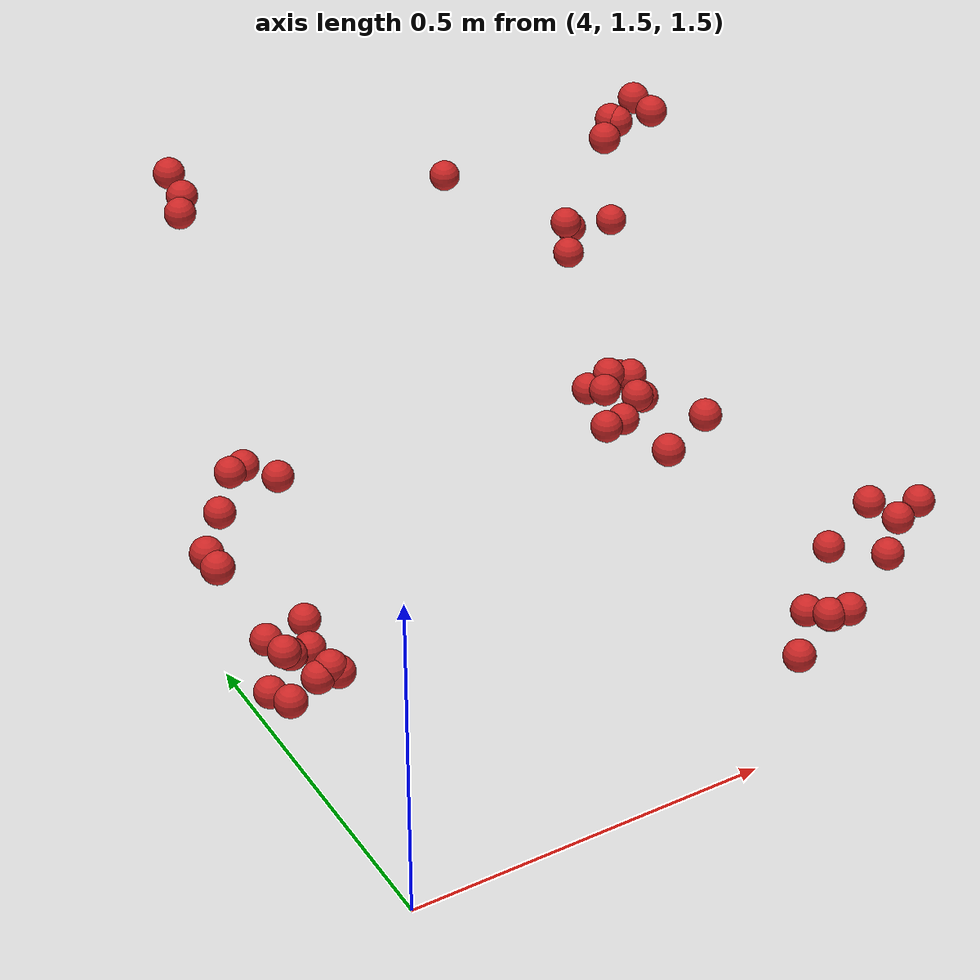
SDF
<sdf version="1.4">
 <model name="fruit_population">
  <static>true</static>
  <link name="fruit_11">
   <pose>4.0162043521151425 1.9047428372640716 1.5357876372793056 0 0 0</pose>
   <collision name="fruit_collision_11"><geometry><sphere><radius>0.022</radius></sphere></geometry></collision>
   <visual name="visual">
    <geometry><sphere><radius>0.022</radius></sphere></geometry>
    <material><script><name>Gazebo/Red</name></script></material>
   </visual>
   <inertial>
    <mass>0.05</mass>
    <inertia>
     <ixx>9.679999999999999e-06</ixx>
     <ixy>0.0</ixy>
     <ixz>0.0</ixz>
     <iyy>9.679999999999999e-06</iyy>
     <iyz>0.0</iyz>
     <izz>9.679999999999999e-06</izz>
    </inertia>
   </inertial>
   <sensor name="fruit_contact_11" type="contact">
    <plugin name="contact_plugin_11" filename="libcontact_plugin.so"/>
    <contact><collision>fruit_collision_11</collision><topic>fruit_contact_topic_11</topic></contact>
   </sensor>
  </link>
  <link name="fruit_25">
   <pose>4.094499160325868 2.1948802602424515 1.5935093604621589 0 0 0</pose>
   <collision name="fruit_collision_25"><geometry><sphere><radius>0.022</radius></sphere></geometry></collision>
   <visual name="visual">
    <geometry><sphere><radius>0.022</radius></sphere></geometry>
    <material><script><name>Gazebo/Red</name></script></material>
   </visual>
   <inertial>
    <mass>0.05</mass>
    <inertia>
     <ixx>9.679999999999999e-06</ixx>
     <ixy>0.0</ixy>
     <ixz>0.0</ixz>
     <iyy>9.679999999999999e-06</iyy>
     <iyz>0.0</iyz>
     <izz>9.679999999999999e-06</izz>
    </inertia>
   </inertial>
   <sensor name="fruit_contact_25" type="contact">
    <plugin name="contact_plugin_25" filename="libcontact_plugin.so"/>
    <contact><collision>fruit_collision_25</collision><topic>fruit_contact_topic_25</topic></contact>
   </sensor>
  </link>
  <link name="fruit_31">
   <pose>4.626004926031138 2.079940448509131 1.6046499372251806 0 0 0</pose>
   <collision name="fruit_collision_31"><geometry><sphere><radius>0.022</radius></sphere></geometry></collision>
   <visual name="visual">
    <geometry><sphere><radius>0.022</radius></sphere></geometry>
    <material><script><name>Gazebo/Red</name></script></material>
   </visual>
   <inertial>
    <mass>0.05</mass>
    <inertia>
     <ixx>9.679999999999999e-06</ixx>
     <ixy>0.0</ixy>
     <ixz>0.0</ixz>
     <iyy>9.679999999999999e-06</iyy>
     <iyz>0.0</iyz>
     <izz>9.679999999999999e-06</izz>
    </inertia>
   </inertial>
   <sensor name="fruit_contact_31" type="contact">
    <plugin name="contact_plugin_31" filename="libcontact_plugin.so"/>
    <contact><collision>fruit_collision_31</collision><topic>fruit_contact_topic_31</topic></contact>
   </sensor>
  </link>
  <link name="fruit_39">
   <pose>4.608836850979096 1.5706008025367495 1.5899644470716272 0 0 0</pose>
   <collision name="fruit_collision_39"><geometry><sphere><radius>0.022</radius></sphere></geometry></collision>
   <visual name="visual">
    <geometry><sphere><radius>0.022</radius></sphere></geometry>
    <material><script><name>Gazebo/Red</name></script></material>
   </visual>
   <inertial>
    <mass>0.05</mass>
    <inertia>
     <ixx>9.679999999999999e-06</ixx>
     <ixy>0.0</ixy>
     <ixz>0.0</ixz>
     <iyy>9.679999999999999e-06</iyy>
     <iyz>0.0</iyz>
     <izz>9.679999999999999e-06</izz>
    </inertia>
   </inertial>
   <sensor name="fruit_contact_39" type="contact">
    <plugin name="contact_plugin_39" filename="libcontact_plugin.so"/>
    <contact><collision>fruit_collision_39</collision><topic>fruit_contact_topic_39</topic></contact>
   </sensor>
  </link>
  <link name="fruit_42">
   <pose>3.9794477216401267 1.7692750189503663 1.6445852971634864 0 0 0</pose>
   <collision name="fruit_collision_42"><geometry><sphere><radius>0.022</radius></sphere></geometry></collision>
   <visual name="visual">
    <geometry><sphere><radius>0.022</radius></sphere></geometry>
    <material><script><name>Gazebo/Red</name></script></material>
   </visual>
   <inertial>
    <mass>0.05</mass>
    <inertia>
     <ixx>9.679999999999999e-06</ixx>
     <ixy>0.0</ixy>
     <ixz>0.0</ixz>
     <iyy>9.679999999999999e-06</iyy>
     <iyz>0.0</iyz>
     <izz>9.679999999999999e-06</izz>
    </inertia>
   </inertial>
   <sensor name="fruit_contact_42" type="contact">
    <plugin name="contact_plugin_42" filename="libcontact_plugin.so"/>
    <contact><collision>fruit_collision_42</collision><topic>fruit_contact_topic_42</topic></contact>
   </sensor>
  </link>
  <link name="fruit_74">
   <pose>4.219352263210061 2.5343877938436443 1.8261503831336887 0 0 0</pose>
   <collision name="fruit_collision_74"><geometry><sphere><radius>0.022</radius></sphere></geometry></collision>
   <visual name="visual">
    <geometry><sphere><radius>0.022</radius></sphere></geometry>
    <material><script><name>Gazebo/Red</name></script></material>
   </visual>
   <inertial>
    <mass>0.05</mass>
    <inertia>
     <ixx>9.679999999999999e-06</ixx>
     <ixy>0.0</ixy>
     <ixz>0.0</ixz>
     <iyy>9.679999999999999e-06</iyy>
     <iyz>0.0</iyz>
     <izz>9.679999999999999e-06</izz>
    </inertia>
   </inertial>
   <sensor name="fruit_contact_74" type="contact">
    <plugin name="contact_plugin_74" filename="libcontact_plugin.so"/>
    <contact><collision>fruit_collision_74</collision><topic>fruit_contact_topic_74</topic></contact>
   </sensor>
  </link>
  <link name="fruit_125">
   <pose>4.711928659190081 2.6822179819482774 1.6185401965041541 0 0 0</pose>
   <collision name="fruit_collision_125"><geometry><sphere><radius>0.022</radius></sphere></geometry></collision>
   <visual name="visual">
    <geometry><sphere><radius>0.022</radius></sphere></geometry>
    <material><script><name>Gazebo/Red</name></script></material>
   </visual>
   <inertial>
    <mass>0.05</mass>
    <inertia>
     <ixx>9.679999999999999e-06</ixx>
     <ixy>0.0</ixy>
     <ixz>0.0</ixz>
     <iyy>9.679999999999999e-06</iyy>
     <iyz>0.0</iyz>
     <izz>9.679999999999999e-06</izz>
    </inertia>
   </inertial>
   <sensor name="fruit_contact_125" type="contact">
    <plugin name="contact_plugin_125" filename="libcontact_plugin.so"/>
    <contact><collision>fruit_collision_125</collision><topic>fruit_contact_topic_125</topic></contact>
   </sensor>
  </link>
  <link name="fruit_128">
   <pose>4.81530322433159 1.676169251220019 1.5945221979912332 0 0 0</pose>
   <collision name="fruit_collision_128"><geometry><sphere><radius>0.022</radius></sphere></geometry></collision>
   <visual name="visual">
    <geometry><sphere><radius>0.022</radius></sphere></geometry>
    <material><script><name>Gazebo/Red</name></script></material>
   </visual>
   <inertial>
    <mass>0.05</mass>
    <inertia>
     <ixx>9.679999999999999e-06</ixx>
     <ixy>0.0</ixy>
     <ixz>0.0</ixz>
     <iyy>9.679999999999999e-06</iyy>
     <iyz>0.0</iyz>
     <izz>9.679999999999999e-06</izz>
    </inertia>
   </inertial>
   <sensor name="fruit_contact_128" type="contact">
    <plugin name="contact_plugin_128" filename="libcontact_plugin.so"/>
    <contact><collision>fruit_collision_128</collision><topic>fruit_contact_topic_128</topic></contact>
   </sensor>
  </link>
  <link name="fruit_131">
   <pose>4.720716970649775 1.7199951657364072 1.503241605257596 0 0 0</pose>
   <collision name="fruit_collision_131"><geometry><sphere><radius>0.022</radius></sphere></geometry></collision>
   <visual name="visual">
    <geometry><sphere><radius>0.022</radius></sphere></geometry>
    <material><script><name>Gazebo/Red</name></script></material>
   </visual>
   <inertial>
    <mass>0.05</mass>
    <inertia>
     <ixx>9.679999999999999e-06</ixx>
     <ixy>0.0</ixy>
     <ixz>0.0</ixz>
     <iyy>9.679999999999999e-06</iyy>
     <iyz>0.0</iyz>
     <izz>9.679999999999999e-06</izz>
    </inertia>
   </inertial>
   <sensor name="fruit_contact_131" type="contact">
    <plugin name="contact_plugin_131" filename="libcontact_plugin.so"/>
    <contact><collision>fruit_collision_131</collision><topic>fruit_contact_topic_131</topic></contact>
   </sensor>
  </link>
  <link name="fruit_132">
   <pose>4.797273644751471 2.4712365531746423 1.58299856172983 0 0 0</pose>
   <collision name="fruit_collision_132"><geometry><sphere><radius>0.022</radius></sphere></geometry></collision>
   <visual name="visual">
    <geometry><sphere><radius>0.022</radius></sphere></geometry>
    <material><script><name>Gazebo/Red</name></script></material>
   </visual>
   <inertial>
    <mass>0.05</mass>
    <inertia>
     <ixx>9.679999999999999e-06</ixx>
     <ixy>0.0</ixy>
     <ixz>0.0</ixz>
     <iyy>9.679999999999999e-06</iyy>
     <iyz>0.0</iyz>
     <izz>9.679999999999999e-06</izz>
    </inertia>
   </inertial>
   <sensor name="fruit_contact_132" type="contact">
    <plugin name="contact_plugin_132" filename="libcontact_plugin.so"/>
    <contact><collision>fruit_collision_132</collision><topic>fruit_contact_topic_132</topic></contact>
   </sensor>
  </link>
  <link name="fruit_148">
   <pose>4.802287558534481 2.383468317016699 1.8354613131143793 0 0 0</pose>
   <collision name="fruit_collision_148"><geometry><sphere><radius>0.022</radius></sphere></geometry></collision>
   <visual name="visual">
    <geometry><sphere><radius>0.022</radius></sphere></geometry>
    <material><script><name>Gazebo/Red</name></script></material>
   </visual>
   <inertial>
    <mass>0.05</mass>
    <inertia>
     <ixx>9.679999999999999e-06</ixx>
     <ixy>0.0</ixy>
     <ixz>0.0</ixz>
     <iyy>9.679999999999999e-06</iyy>
     <iyz>0.0</iyz>
     <izz>9.679999999999999e-06</izz>
    </inertia>
   </inertial>
   <sensor name="fruit_contact_148" type="contact">
    <plugin name="contact_plugin_148" filename="libcontact_plugin.so"/>
    <contact><collision>fruit_collision_148</collision><topic>fruit_contact_topic_148</topic></contact>
   </sensor>
  </link>
  <link name="fruit_165">
   <pose>4.585671247718744 1.858172738304406 1.7370080458990373 0 0 0</pose>
   <collision name="fruit_collision_165"><geometry><sphere><radius>0.022</radius></sphere></geometry></collision>
   <visual name="visual">
    <geometry><sphere><radius>0.022</radius></sphere></geometry>
    <material><script><name>Gazebo/Red</name></script></material>
   </visual>
   <inertial>
    <mass>0.05</mass>
    <inertia>
     <ixx>9.679999999999999e-06</ixx>
     <ixy>0.0</ixy>
     <ixz>0.0</ixz>
     <iyy>9.679999999999999e-06</iyy>
     <iyz>0.0</iyz>
     <izz>9.679999999999999e-06</izz>
    </inertia>
   </inertial>
   <sensor name="fruit_contact_165" type="contact">
    <plugin name="contact_plugin_165" filename="libcontact_plugin.so"/>
    <contact><collision>fruit_collision_165</collision><topic>fruit_contact_topic_165</topic></contact>
   </sensor>
  </link>
  <link name="fruit_180">
   <pose>4.852100298155959 2.4328940915136554 1.816226708182252 0 0 0</pose>
   <collision name="fruit_collision_180"><geometry><sphere><radius>0.022</radius></sphere></geometry></collision>
   <visual name="visual">
    <geometry><sphere><radius>0.022</radius></sphere></geometry>
    <material><script><name>Gazebo/Red</name></script></material>
   </visual>
   <inertial>
    <mass>0.05</mass>
    <inertia>
     <ixx>9.679999999999999e-06</ixx>
     <ixy>0.0</ixy>
     <ixz>0.0</ixz>
     <iyy>9.679999999999999e-06</iyy>
     <iyz>0.0</iyz>
     <izz>9.679999999999999e-06</izz>
    </inertia>
   </inertial>
   <sensor name="fruit_contact_180" type="contact">
    <plugin name="contact_plugin_180" filename="libcontact_plugin.so"/>
    <contact><collision>fruit_collision_180</collision><topic>fruit_contact_topic_180</topic></contact>
   </sensor>
  </link>
  <link name="fruit_215">
   <pose>4.687666405672489 1.6207431292897945 1.5880148941882835 0 0 0</pose>
   <collision name="fruit_collision_215"><geometry><sphere><radius>0.022</radius></sphere></geometry></collision>
   <visual name="visual">
    <geometry><sphere><radius>0.022</radius></sphere></geometry>
    <material><script><name>Gazebo/Red</name></script></material>
   </visual>
   <inertial>
    <mass>0.05</mass>
    <inertia>
     <ixx>9.679999999999999e-06</ixx>
     <ixy>0.0</ixy>
     <ixz>0.0</ixz>
     <iyy>9.679999999999999e-06</iyy>
     <iyz>0.0</iyz>
     <izz>9.679999999999999e-06</izz>
    </inertia>
   </inertial>
   <sensor name="fruit_contact_215" type="contact">
    <plugin name="contact_plugin_215" filename="libcontact_plugin.so"/>
    <contact><collision>fruit_collision_215</collision><topic>fruit_contact_topic_215</topic></contact>
   </sensor>
  </link>
  <link name="fruit_229">
   <pose>4.6678330712776 2.1539724494736103 1.6003763107101694 0 0 0</pose>
   <collision name="fruit_collision_229"><geometry><sphere><radius>0.022</radius></sphere></geometry></collision>
   <visual name="visual">
    <geometry><sphere><radius>0.022</radius></sphere></geometry>
    <material><script><name>Gazebo/Red</name></script></material>
   </visual>
   <inertial>
    <mass>0.05</mass>
    <inertia>
     <ixx>9.679999999999999e-06</ixx>
     <ixy>0.0</ixy>
     <ixz>0.0</ixz>
     <iyy>9.679999999999999e-06</iyy>
     <iyz>0.0</iyz>
     <izz>9.679999999999999e-06</izz>
    </inertia>
   </inertial>
   <sensor name="fruit_contact_229" type="contact">
    <plugin name="contact_plugin_229" filename="libcontact_plugin.so"/>
    <contact><collision>fruit_collision_229</collision><topic>fruit_contact_topic_229</topic></contact>
   </sensor>
  </link>
  <link name="fruit_235">
   <pose>4.715909177323655 1.6157356808062333 1.5876490571861954 0 0 0</pose>
   <collision name="fruit_collision_235"><geometry><sphere><radius>0.022</radius></sphere></geometry></collision>
   <visual name="visual">
    <geometry><sphere><radius>0.022</radius></sphere></geometry>
    <material><script><name>Gazebo/Red</name></script></material>
   </visual>
   <inertial>
    <mass>0.05</mass>
    <inertia>
     <ixx>9.679999999999999e-06</ixx>
     <ixy>0.0</ixy>
     <ixz>0.0</ixz>
     <iyy>9.679999999999999e-06</iyy>
     <iyz>0.0</iyz>
     <izz>9.679999999999999e-06</izz>
    </inertia>
   </inertial>
   <sensor name="fruit_contact_235" type="contact">
    <plugin name="contact_plugin_235" filename="libcontact_plugin.so"/>
    <contact><collision>fruit_collision_235</collision><topic>fruit_contact_topic_235</topic></contact>
   </sensor>
  </link>
  <link name="fruit_246">
   <pose>4.246040669585065 2.5830554645423223 1.8148079206769185 0 0 0</pose>
   <collision name="fruit_collision_246"><geometry><sphere><radius>0.022</radius></sphere></geometry></collision>
   <visual name="visual">
    <geometry><sphere><radius>0.022</radius></sphere></geometry>
    <material><script><name>Gazebo/Red</name></script></material>
   </visual>
   <inertial>
    <mass>0.05</mass>
    <inertia>
     <ixx>9.679999999999999e-06</ixx>
     <ixy>0.0</ixy>
     <ixz>0.0</ixz>
     <iyy>9.679999999999999e-06</iyy>
     <iyz>0.0</iyz>
     <izz>9.679999999999999e-06</izz>
    </inertia>
   </inertial>
   <sensor name="fruit_contact_246" type="contact">
    <plugin name="contact_plugin_246" filename="libcontact_plugin.so"/>
    <contact><collision>fruit_collision_246</collision><topic>fruit_contact_topic_246</topic></contact>
   </sensor>
  </link>
  <link name="fruit_265">
   <pose>4.024045659908161 1.8736158165318326 1.626617536212047 0 0 0</pose>
   <collision name="fruit_collision_265"><geometry><sphere><radius>0.022</radius></sphere></geometry></collision>
   <visual name="visual">
    <geometry><sphere><radius>0.022</radius></sphere></geometry>
    <material><script><name>Gazebo/Red</name></script></material>
   </visual>
   <inertial>
    <mass>0.05</mass>
    <inertia>
     <ixx>9.679999999999999e-06</ixx>
     <ixy>0.0</ixy>
     <ixz>0.0</ixz>
     <iyy>9.679999999999999e-06</iyy>
     <iyz>0.0</iyz>
     <izz>9.679999999999999e-06</izz>
    </inertia>
   </inertial>
   <sensor name="fruit_contact_265" type="contact">
    <plugin name="contact_plugin_265" filename="libcontact_plugin.so"/>
    <contact><collision>fruit_collision_265</collision><topic>fruit_contact_topic_265</topic></contact>
   </sensor>
  </link>
  <link name="fruit_325">
   <pose>4.077661645293439 1.9653186388576822 1.5262123262641325 0 0 0</pose>
   <collision name="fruit_collision_325"><geometry><sphere><radius>0.022</radius></sphere></geometry></collision>
   <visual name="visual">
    <geometry><sphere><radius>0.022</radius></sphere></geometry>
    <material><script><name>Gazebo/Red</name></script></material>
   </visual>
   <inertial>
    <mass>0.05</mass>
    <inertia>
     <ixx>9.679999999999999e-06</ixx>
     <ixy>0.0</ixy>
     <ixz>0.0</ixz>
     <iyy>9.679999999999999e-06</iyy>
     <iyz>0.0</iyz>
     <izz>9.679999999999999e-06</izz>
    </inertia>
   </inertial>
   <sensor name="fruit_contact_325" type="contact">
    <plugin name="contact_plugin_325" filename="libcontact_plugin.so"/>
    <contact><collision>fruit_collision_325</collision><topic>fruit_contact_topic_325</topic></contact>
   </sensor>
  </link>
  <link name="fruit_338">
   <pose>4.70850171533858 2.185899148338576 1.5881276936756619 0 0 0</pose>
   <collision name="fruit_collision_338"><geometry><sphere><radius>0.022</radius></sphere></geometry></collision>
   <visual name="visual">
    <geometry><sphere><radius>0.022</radius></sphere></geometry>
    <material><script><name>Gazebo/Red</name></script></material>
   </visual>
   <inertial>
    <mass>0.05</mass>
    <inertia>
     <ixx>9.679999999999999e-06</ixx>
     <ixy>0.0</ixy>
     <ixz>0.0</ixz>
     <iyy>9.679999999999999e-06</iyy>
     <iyz>0.0</iyz>
     <izz>9.679999999999999e-06</izz>
    </inertia>
   </inertial>
   <sensor name="fruit_contact_338" type="contact">
    <plugin name="contact_plugin_338" filename="libcontact_plugin.so"/>
    <contact><collision>fruit_collision_338</collision><topic>fruit_contact_topic_338</topic></contact>
   </sensor>
  </link>
  <link name="fruit_367">
   <pose>4.14940669895183 2.272567970315322 1.5849263516158243 0 0 0</pose>
   <collision name="fruit_collision_367"><geometry><sphere><radius>0.022</radius></sphere></geometry></collision>
   <visual name="visual">
    <geometry><sphere><radius>0.022</radius></sphere></geometry>
    <material><script><name>Gazebo/Red</name></script></material>
   </visual>
   <inertial>
    <mass>0.05</mass>
    <inertia>
     <ixx>9.679999999999999e-06</ixx>
     <ixy>0.0</ixy>
     <ixz>0.0</ixz>
     <iyy>9.679999999999999e-06</iyy>
     <iyz>0.0</iyz>
     <izz>9.679999999999999e-06</izz>
    </inertia>
   </inertial>
   <sensor name="fruit_contact_367" type="contact">
    <plugin name="contact_plugin_367" filename="libcontact_plugin.so"/>
    <contact><collision>fruit_collision_367</collision><topic>fruit_contact_topic_367</topic></contact>
   </sensor>
  </link>
  <link name="fruit_388">
   <pose>4.893544880893253 2.4088696570385606 1.8335403078714687 0 0 0</pose>
   <collision name="fruit_collision_388"><geometry><sphere><radius>0.022</radius></sphere></geometry></collision>
   <visual name="visual">
    <geometry><sphere><radius>0.022</radius></sphere></geometry>
    <material><script><name>Gazebo/Red</name></script></material>
   </visual>
   <inertial>
    <mass>0.05</mass>
    <inertia>
     <ixx>9.679999999999999e-06</ixx>
     <ixy>0.0</ixy>
     <ixz>0.0</ixz>
     <iyy>9.679999999999999e-06</iyy>
     <iyz>0.0</iyz>
     <izz>9.679999999999999e-06</izz>
    </inertia>
   </inertial>
   <sensor name="fruit_contact_388" type="contact">
    <plugin name="contact_plugin_388" filename="libcontact_plugin.so"/>
    <contact><collision>fruit_collision_388</collision><topic>fruit_contact_topic_388</topic></contact>
   </sensor>
  </link>
  <link name="fruit_400">
   <pose>4.914995238933777 1.7503307980226777 1.5892818448460615 0 0 0</pose>
   <collision name="fruit_collision_400"><geometry><sphere><radius>0.022</radius></sphere></geometry></collision>
   <visual name="visual">
    <geometry><sphere><radius>0.022</radius></sphere></geometry>
    <material><script><name>Gazebo/Red</name></script></material>
   </visual>
   <inertial>
    <mass>0.05</mass>
    <inertia>
     <ixx>9.679999999999999e-06</ixx>
     <ixy>0.0</ixy>
     <ixz>0.0</ixz>
     <iyy>9.679999999999999e-06</iyy>
     <iyz>0.0</iyz>
     <izz>9.679999999999999e-06</izz>
    </inertia>
   </inertial>
   <sensor name="fruit_contact_400" type="contact">
    <plugin name="contact_plugin_400" filename="libcontact_plugin.so"/>
    <contact><collision>fruit_collision_400</collision><topic>fruit_contact_topic_400</topic></contact>
   </sensor>
  </link>
  <link name="fruit_410">
   <pose>4.833865170887399 2.540879509520191 1.5783065229699984 0 0 0</pose>
   <collision name="fruit_collision_410"><geometry><sphere><radius>0.022</radius></sphere></geometry></collision>
   <visual name="visual">
    <geometry><sphere><radius>0.022</radius></sphere></geometry>
    <material><script><name>Gazebo/Red</name></script></material>
   </visual>
   <inertial>
    <mass>0.05</mass>
    <inertia>
     <ixx>9.679999999999999e-06</ixx>
     <ixy>0.0</ixy>
     <ixz>0.0</ixz>
     <iyy>9.679999999999999e-06</iyy>
     <iyz>0.0</iyz>
     <izz>9.679999999999999e-06</izz>
    </inertia>
   </inertial>
   <sensor name="fruit_contact_410" type="contact">
    <plugin name="contact_plugin_410" filename="libcontact_plugin.so"/>
    <contact><collision>fruit_collision_410</collision><topic>fruit_contact_topic_410</topic></contact>
   </sensor>
  </link>
  <link name="fruit_424">
   <pose>4.066336355103551 2.0133192439368646 1.5199628757919568 0 0 0</pose>
   <collision name="fruit_collision_424"><geometry><sphere><radius>0.022</radius></sphere></geometry></collision>
   <visual name="visual">
    <geometry><sphere><radius>0.022</radius></sphere></geometry>
    <material><script><name>Gazebo/Red</name></script></material>
   </visual>
   <inertial>
    <mass>0.05</mass>
    <inertia>
     <ixx>9.679999999999999e-06</ixx>
     <ixy>0.0</ixy>
     <ixz>0.0</ixz>
     <iyy>9.679999999999999e-06</iyy>
     <iyz>0.0</iyz>
     <izz>9.679999999999999e-06</izz>
    </inertia>
   </inertial>
   <sensor name="fruit_contact_424" type="contact">
    <plugin name="contact_plugin_424" filename="libcontact_plugin.so"/>
    <contact><collision>fruit_collision_424</collision><topic>fruit_contact_topic_424</topic></contact>
   </sensor>
  </link>
  <link name="fruit_426">
   <pose>4.693354763924732 1.6254762996251784 1.5796075394355749 0 0 0</pose>
   <collision name="fruit_collision_426"><geometry><sphere><radius>0.022</radius></sphere></geometry></collision>
   <visual name="visual">
    <geometry><sphere><radius>0.022</radius></sphere></geometry>
    <material><script><name>Gazebo/Red</name></script></material>
   </visual>
   <inertial>
    <mass>0.05</mass>
    <inertia>
     <ixx>9.679999999999999e-06</ixx>
     <ixy>0.0</ixy>
     <ixz>0.0</ixz>
     <iyy>9.679999999999999e-06</iyy>
     <iyz>0.0</iyz>
     <izz>9.679999999999999e-06</izz>
    </inertia>
   </inertial>
   <sensor name="fruit_contact_426" type="contact">
    <plugin name="contact_plugin_426" filename="libcontact_plugin.so"/>
    <contact><collision>fruit_collision_426</collision><topic>fruit_contact_topic_426</topic></contact>
   </sensor>
  </link>
  <link name="fruit_430">
   <pose>4.658006260335356 2.1835844503650184 1.5863001800125582 0 0 0</pose>
   <collision name="fruit_collision_430"><geometry><sphere><radius>0.022</radius></sphere></geometry></collision>
   <visual name="visual">
    <geometry><sphere><radius>0.022</radius></sphere></geometry>
    <material><script><name>Gazebo/Red</name></script></material>
   </visual>
   <inertial>
    <mass>0.05</mass>
    <inertia>
     <ixx>9.679999999999999e-06</ixx>
     <ixy>0.0</ixy>
     <ixz>0.0</ixz>
     <iyy>9.679999999999999e-06</iyy>
     <iyz>0.0</iyz>
     <izz>9.679999999999999e-06</izz>
    </inertia>
   </inertial>
   <sensor name="fruit_contact_430" type="contact">
    <plugin name="contact_plugin_430" filename="libcontact_plugin.so"/>
    <contact><collision>fruit_collision_430</collision><topic>fruit_contact_topic_430</topic></contact>
   </sensor>
  </link>
  <link name="fruit_433">
   <pose>4.688799580774525 2.1786555625630726 1.603976480156369 0 0 0</pose>
   <collision name="fruit_collision_433"><geometry><sphere><radius>0.022</radius></sphere></geometry></collision>
   <visual name="visual">
    <geometry><sphere><radius>0.022</radius></sphere></geometry>
    <material><script><name>Gazebo/Red</name></script></material>
   </visual>
   <inertial>
    <mass>0.05</mass>
    <inertia>
     <ixx>9.679999999999999e-06</ixx>
     <ixy>0.0</ixy>
     <ixz>0.0</ixz>
     <iyy>9.679999999999999e-06</iyy>
     <iyz>0.0</iyz>
     <izz>9.679999999999999e-06</izz>
    </inertia>
   </inertial>
   <sensor name="fruit_contact_433" type="contact">
    <plugin name="contact_plugin_433" filename="libcontact_plugin.so"/>
    <contact><collision>fruit_collision_433</collision><topic>fruit_contact_topic_433</topic></contact>
   </sensor>
  </link>
  <link name="fruit_444">
   <pose>4.700043515176777 2.1213385941430465 1.6005035885978147 0 0 0</pose>
   <collision name="fruit_collision_444"><geometry><sphere><radius>0.022</radius></sphere></geometry></collision>
   <visual name="visual">
    <geometry><sphere><radius>0.022</radius></sphere></geometry>
    <material><script><name>Gazebo/Red</name></script></material>
   </visual>
   <inertial>
    <mass>0.05</mass>
    <inertia>
     <ixx>9.679999999999999e-06</ixx>
     <ixy>0.0</ixy>
     <ixz>0.0</ixz>
     <iyy>9.679999999999999e-06</iyy>
     <iyz>0.0</iyz>
     <izz>9.679999999999999e-06</izz>
    </inertia>
   </inertial>
   <sensor name="fruit_contact_444" type="contact">
    <plugin name="contact_plugin_444" filename="libcontact_plugin.so"/>
    <contact><collision>fruit_collision_444</collision><topic>fruit_contact_topic_444</topic></contact>
   </sensor>
  </link>
  <link name="fruit_487">
   <pose>4.033397261264316 1.7986424698160821 1.6373501732787965 0 0 0</pose>
   <collision name="fruit_collision_487"><geometry><sphere><radius>0.022</radius></sphere></geometry></collision>
   <visual name="visual">
    <geometry><sphere><radius>0.022</radius></sphere></geometry>
    <material><script><name>Gazebo/Red</name></script></material>
   </visual>
   <inertial>
    <mass>0.05</mass>
    <inertia>
     <ixx>9.679999999999999e-06</ixx>
     <ixy>0.0</ixy>
     <ixz>0.0</ixz>
     <iyy>9.679999999999999e-06</iyy>
     <iyz>0.0</iyz>
     <izz>9.679999999999999e-06</izz>
    </inertia>
   </inertial>
   <sensor name="fruit_contact_487" type="contact">
    <plugin name="contact_plugin_487" filename="libcontact_plugin.so"/>
    <contact><collision>fruit_collision_487</collision><topic>fruit_contact_topic_487</topic></contact>
   </sensor>
  </link>
  <link name="fruit_534">
   <pose>4.895193712768144 2.459450707906371 1.8250372074137053 0 0 0</pose>
   <collision name="fruit_collision_534"><geometry><sphere><radius>0.022</radius></sphere></geometry></collision>
   <visual name="visual">
    <geometry><sphere><radius>0.022</radius></sphere></geometry>
    <material><script><name>Gazebo/Red</name></script></material>
   </visual>
   <inertial>
    <mass>0.05</mass>
    <inertia>
     <ixx>9.679999999999999e-06</ixx>
     <ixy>0.0</ixy>
     <ixz>0.0</ixz>
     <iyy>9.679999999999999e-06</iyy>
     <iyz>0.0</iyz>
     <izz>9.679999999999999e-06</izz>
    </inertia>
   </inertial>
   <sensor name="fruit_contact_534" type="contact">
    <plugin name="contact_plugin_534" filename="libcontact_plugin.so"/>
    <contact><collision>fruit_collision_534</collision><topic>fruit_contact_topic_534</topic></contact>
   </sensor>
  </link>
  <link name="fruit_543">
   <pose>4.824454920506052 1.823869568991043 1.4931409606250456 0 0 0</pose>
   <collision name="fruit_collision_543"><geometry><sphere><radius>0.022</radius></sphere></geometry></collision>
   <visual name="visual">
    <geometry><sphere><radius>0.022</radius></sphere></geometry>
    <material><script><name>Gazebo/Red</name></script></material>
   </visual>
   <inertial>
    <mass>0.05</mass>
    <inertia>
     <ixx>9.679999999999999e-06</ixx>
     <ixy>0.0</ixy>
     <ixz>0.0</ixz>
     <iyy>9.679999999999999e-06</iyy>
     <iyz>0.0</iyz>
     <izz>9.679999999999999e-06</izz>
    </inertia>
   </inertial>
   <sensor name="fruit_contact_543" type="contact">
    <plugin name="contact_plugin_543" filename="libcontact_plugin.so"/>
    <contact><collision>fruit_collision_543</collision><topic>fruit_contact_topic_543</topic></contact>
   </sensor>
  </link>
  <link name="fruit_546">
   <pose>3.940868957658782 1.9085904154061837 1.8012349298658432 0 0 0</pose>
   <collision name="fruit_collision_546"><geometry><sphere><radius>0.022</radius></sphere></geometry></collision>
   <visual name="visual">
    <geometry><sphere><radius>0.022</radius></sphere></geometry>
    <material><script><name>Gazebo/Red</name></script></material>
   </visual>
   <inertial>
    <mass>0.05</mass>
    <inertia>
     <ixx>9.679999999999999e-06</ixx>
     <ixy>0.0</ixy>
     <ixz>0.0</ixz>
     <iyy>9.679999999999999e-06</iyy>
     <iyz>0.0</iyz>
     <izz>9.679999999999999e-06</izz>
    </inertia>
   </inertial>
   <sensor name="fruit_contact_546" type="contact">
    <plugin name="contact_plugin_546" filename="libcontact_plugin.so"/>
    <contact><collision>fruit_collision_546</collision><topic>fruit_contact_topic_546</topic></contact>
   </sensor>
  </link>
  <link name="fruit_557">
   <pose>4.720316170877134 2.1721034815367943 1.5939696282170244 0 0 0</pose>
   <collision name="fruit_collision_557"><geometry><sphere><radius>0.022</radius></sphere></geometry></collision>
   <visual name="visual">
    <geometry><sphere><radius>0.022</radius></sphere></geometry>
    <material><script><name>Gazebo/Red</name></script></material>
   </visual>
   <inertial>
    <mass>0.05</mass>
    <inertia>
     <ixx>9.679999999999999e-06</ixx>
     <ixy>0.0</ixy>
     <ixz>0.0</ixz>
     <iyy>9.679999999999999e-06</iyy>
     <iyz>0.0</iyz>
     <izz>9.679999999999999e-06</izz>
    </inertia>
   </inertial>
   <sensor name="fruit_contact_557" type="contact">
    <plugin name="contact_plugin_557" filename="libcontact_plugin.so"/>
    <contact><collision>fruit_collision_557</collision><topic>fruit_contact_topic_557</topic></contact>
   </sensor>
  </link>
  <link name="fruit_603">
   <pose>4.857767064955095 1.7835071123531774 1.5878918282528312 0 0 0</pose>
   <collision name="fruit_collision_603"><geometry><sphere><radius>0.022</radius></sphere></geometry></collision>
   <visual name="visual">
    <geometry><sphere><radius>0.022</radius></sphere></geometry>
    <material><script><name>Gazebo/Red</name></script></material>
   </visual>
   <inertial>
    <mass>0.05</mass>
    <inertia>
     <ixx>9.679999999999999e-06</ixx>
     <ixy>0.0</ixy>
     <ixz>0.0</ixz>
     <iyy>9.679999999999999e-06</iyy>
     <iyz>0.0</iyz>
     <izz>9.679999999999999e-06</izz>
    </inertia>
   </inertial>
   <sensor name="fruit_contact_603" type="contact">
    <plugin name="contact_plugin_603" filename="libcontact_plugin.so"/>
    <contact><collision>fruit_collision_603</collision><topic>fruit_contact_topic_603</topic></contact>
   </sensor>
  </link>
  <link name="fruit_623">
   <pose>3.9422200346575935 1.8815808723324081 1.7972387670759278 0 0 0</pose>
   <collision name="fruit_collision_623"><geometry><sphere><radius>0.022</radius></sphere></geometry></collision>
   <visual name="visual">
    <geometry><sphere><radius>0.022</radius></sphere></geometry>
    <material><script><name>Gazebo/Red</name></script></material>
   </visual>
   <inertial>
    <mass>0.05</mass>
    <inertia>
     <ixx>9.679999999999999e-06</ixx>
     <ixy>0.0</ixy>
     <ixz>0.0</ixz>
     <iyy>9.679999999999999e-06</iyy>
     <iyz>0.0</iyz>
     <izz>9.679999999999999e-06</izz>
    </inertia>
   </inertial>
   <sensor name="fruit_contact_623" type="contact">
    <plugin name="contact_plugin_623" filename="libcontact_plugin.so"/>
    <contact><collision>fruit_collision_623</collision><topic>fruit_contact_topic_623</topic></contact>
   </sensor>
  </link>
  <link name="fruit_629">
   <pose>4.109550574357251 1.9737164509669016 1.5170852053401134 0 0 0</pose>
   <collision name="fruit_collision_629"><geometry><sphere><radius>0.022</radius></sphere></geometry></collision>
   <visual name="visual">
    <geometry><sphere><radius>0.022</radius></sphere></geometry>
    <material><script><name>Gazebo/Red</name></script></material>
   </visual>
   <inertial>
    <mass>0.05</mass>
    <inertia>
     <ixx>9.679999999999999e-06</ixx>
     <ixy>0.0</ixy>
     <ixz>0.0</ixz>
     <iyy>9.679999999999999e-06</iyy>
     <iyz>0.0</iyz>
     <izz>9.679999999999999e-06</izz>
    </inertia>
   </inertial>
   <sensor name="fruit_contact_629" type="contact">
    <plugin name="contact_plugin_629" filename="libcontact_plugin.so"/>
    <contact><collision>fruit_collision_629</collision><topic>fruit_contact_topic_629</topic></contact>
   </sensor>
  </link>
  <link name="fruit_651">
   <pose>4.895879447972543 2.516482500114885 1.5758754765850067 0 0 0</pose>
   <collision name="fruit_collision_651"><geometry><sphere><radius>0.022</radius></sphere></geometry></collision>
   <visual name="visual">
    <geometry><sphere><radius>0.022</radius></sphere></geometry>
    <material><script><name>Gazebo/Red</name></script></material>
   </visual>
   <inertial>
    <mass>0.05</mass>
    <inertia>
     <ixx>9.679999999999999e-06</ixx>
     <ixy>0.0</ixy>
     <ixz>0.0</ixz>
     <iyy>9.679999999999999e-06</iyy>
     <iyz>0.0</iyz>
     <izz>9.679999999999999e-06</izz>
    </inertia>
   </inertial>
   <sensor name="fruit_contact_651" type="contact">
    <plugin name="contact_plugin_651" filename="libcontact_plugin.so"/>
    <contact><collision>fruit_collision_651</collision><topic>fruit_contact_topic_651</topic></contact>
   </sensor>
  </link>
  <link name="fruit_659">
   <pose>4.672271860450133 1.906059654067503 1.7269605613606194 0 0 0</pose>
   <collision name="fruit_collision_659"><geometry><sphere><radius>0.022</radius></sphere></geometry></collision>
   <visual name="visual">
    <geometry><sphere><radius>0.022</radius></sphere></geometry>
    <material><script><name>Gazebo/Red</name></script></material>
   </visual>
   <inertial>
    <mass>0.05</mass>
    <inertia>
     <ixx>9.679999999999999e-06</ixx>
     <ixy>0.0</ixy>
     <ixz>0.0</ixz>
     <iyy>9.679999999999999e-06</iyy>
     <iyz>0.0</iyz>
     <izz>9.679999999999999e-06</izz>
    </inertia>
   </inertial>
   <sensor name="fruit_contact_659" type="contact">
    <plugin name="contact_plugin_659" filename="libcontact_plugin.so"/>
    <contact><collision>fruit_collision_659</collision><topic>fruit_contact_topic_659</topic></contact>
   </sensor>
  </link>
  <link name="fruit_662">
   <pose>4.846218297471581 2.44046877299936 1.8176940598023448 0 0 0</pose>
   <collision name="fruit_collision_662"><geometry><sphere><radius>0.022</radius></sphere></geometry></collision>
   <visual name="visual">
    <geometry><sphere><radius>0.022</radius></sphere></geometry>
    <material><script><name>Gazebo/Red</name></script></material>
   </visual>
   <inertial>
    <mass>0.05</mass>
    <inertia>
     <ixx>9.679999999999999e-06</ixx>
     <ixy>0.0</ixy>
     <ixz>0.0</ixz>
     <iyy>9.679999999999999e-06</iyy>
     <iyz>0.0</iyz>
     <izz>9.679999999999999e-06</izz>
    </inertia>
   </inertial>
   <sensor name="fruit_contact_662" type="contact">
    <plugin name="contact_plugin_662" filename="libcontact_plugin.so"/>
    <contact><collision>fruit_collision_662</collision><topic>fruit_contact_topic_662</topic></contact>
   </sensor>
  </link>
  <link name="fruit_679">
   <pose>4.17369791258357 2.2813261727096377 1.580461593675474 0 0 0</pose>
   <collision name="fruit_collision_679"><geometry><sphere><radius>0.022</radius></sphere></geometry></collision>
   <visual name="visual">
    <geometry><sphere><radius>0.022</radius></sphere></geometry>
    <material><script><name>Gazebo/Red</name></script></material>
   </visual>
   <inertial>
    <mass>0.05</mass>
    <inertia>
     <ixx>9.679999999999999e-06</ixx>
     <ixy>0.0</ixy>
     <ixz>0.0</ixz>
     <iyy>9.679999999999999e-06</iyy>
     <iyz>0.0</iyz>
     <izz>9.679999999999999e-06</izz>
    </inertia>
   </inertial>
   <sensor name="fruit_contact_679" type="contact">
    <plugin name="contact_plugin_679" filename="libcontact_plugin.so"/>
    <contact><collision>fruit_collision_679</collision><topic>fruit_contact_topic_679</topic></contact>
   </sensor>
  </link>
  <link name="fruit_689">
   <pose>4.846054721819529 2.5472762454617195 1.561210914184723 0 0 0</pose>
   <collision name="fruit_collision_689"><geometry><sphere><radius>0.022</radius></sphere></geometry></collision>
   <visual name="visual">
    <geometry><sphere><radius>0.022</radius></sphere></geometry>
    <material><script><name>Gazebo/Red</name></script></material>
   </visual>
   <inertial>
    <mass>0.05</mass>
    <inertia>
     <ixx>9.679999999999999e-06</ixx>
     <ixy>0.0</ixy>
     <ixz>0.0</ixz>
     <iyy>9.679999999999999e-06</iyy>
     <iyz>0.0</iyz>
     <izz>9.679999999999999e-06</izz>
    </inertia>
   </inertial>
   <sensor name="fruit_contact_689" type="contact">
    <plugin name="contact_plugin_689" filename="libcontact_plugin.so"/>
    <contact><collision>fruit_collision_689</collision><topic>fruit_contact_topic_689</topic></contact>
   </sensor>
  </link>
  <link name="fruit_697">
   <pose>4.063140310568996 1.7985929035636603 1.6332966964280462 0 0 0</pose>
   <collision name="fruit_collision_697"><geometry><sphere><radius>0.022</radius></sphere></geometry></collision>
   <visual name="visual">
    <geometry><sphere><radius>0.022</radius></sphere></geometry>
    <material><script><name>Gazebo/Red</name></script></material>
   </visual>
   <inertial>
    <mass>0.05</mass>
    <inertia>
     <ixx>9.679999999999999e-06</ixx>
     <ixy>0.0</ixy>
     <ixz>0.0</ixz>
     <iyy>9.679999999999999e-06</iyy>
     <iyz>0.0</iyz>
     <izz>9.679999999999999e-06</izz>
    </inertia>
   </inertial>
   <sensor name="fruit_contact_697" type="contact">
    <plugin name="contact_plugin_697" filename="libcontact_plugin.so"/>
    <contact><collision>fruit_collision_697</collision><topic>fruit_contact_topic_697</topic></contact>
   </sensor>
  </link>
  <link name="fruit_705">
   <pose>4.875984938780657 1.7409523160266744 1.583091147778385 0 0 0</pose>
   <collision name="fruit_collision_705"><geometry><sphere><radius>0.022</radius></sphere></geometry></collision>
   <visual name="visual">
    <geometry><sphere><radius>0.022</radius></sphere></geometry>
    <material><script><name>Gazebo/Red</name></script></material>
   </visual>
   <inertial>
    <mass>0.05</mass>
    <inertia>
     <ixx>9.679999999999999e-06</ixx>
     <ixy>0.0</ixy>
     <ixz>0.0</ixz>
     <iyy>9.679999999999999e-06</iyy>
     <iyz>0.0</iyz>
     <izz>9.679999999999999e-06</izz>
    </inertia>
   </inertial>
   <sensor name="fruit_contact_705" type="contact">
    <plugin name="contact_plugin_705" filename="libcontact_plugin.so"/>
    <contact><collision>fruit_collision_705</collision><topic>fruit_contact_topic_705</topic></contact>
   </sensor>
  </link>
  <link name="fruit_714">
   <pose>4.0532621596911085 1.8020438089578674 1.6443327144487798 0 0 0</pose>
   <collision name="fruit_collision_714"><geometry><sphere><radius>0.022</radius></sphere></geometry></collision>
   <visual name="visual">
    <geometry><sphere><radius>0.022</radius></sphere></geometry>
    <material><script><name>Gazebo/Red</name></script></material>
   </visual>
   <inertial>
    <mass>0.05</mass>
    <inertia>
     <ixx>9.679999999999999e-06</ixx>
     <ixy>0.0</ixy>
     <ixz>0.0</ixz>
     <iyy>9.679999999999999e-06</iyy>
     <iyz>0.0</iyz>
     <izz>9.679999999999999e-06</izz>
    </inertia>
   </inertial>
   <sensor name="fruit_contact_714" type="contact">
    <plugin name="contact_plugin_714" filename="libcontact_plugin.so"/>
    <contact><collision>fruit_collision_714</collision><topic>fruit_contact_topic_714</topic></contact>
   </sensor>
  </link>
  <link name="fruit_731">
   <pose>4.2507200146112725 2.6315162130484873 1.8211626864157564 0 0 0</pose>
   <collision name="fruit_collision_731"><geometry><sphere><radius>0.022</radius></sphere></geometry></collision>
   <visual name="visual">
    <geometry><sphere><radius>0.022</radius></sphere></geometry>
    <material><script><name>Gazebo/Red</name></script></material>
   </visual>
   <inertial>
    <mass>0.05</mass>
    <inertia>
     <ixx>9.679999999999999e-06</ixx>
     <ixy>0.0</ixy>
     <ixz>0.0</ixz>
     <iyy>9.679999999999999e-06</iyy>
     <iyz>0.0</iyz>
     <izz>9.679999999999999e-06</izz>
    </inertia>
   </inertial>
   <sensor name="fruit_contact_731" type="contact">
    <plugin name="contact_plugin_731" filename="libcontact_plugin.so"/>
    <contact><collision>fruit_collision_731</collision><topic>fruit_contact_topic_731</topic></contact>
   </sensor>
  </link>
  <link name="fruit_745">
   <pose>4.082719059023973 1.9716764200962582 1.5195206954896243 0 0 0</pose>
   <collision name="fruit_collision_745"><geometry><sphere><radius>0.022</radius></sphere></geometry></collision>
   <visual name="visual">
    <geometry><sphere><radius>0.022</radius></sphere></geometry>
    <material><script><name>Gazebo/Red</name></script></material>
   </visual>
   <inertial>
    <mass>0.05</mass>
    <inertia>
     <ixx>9.679999999999999e-06</ixx>
     <ixy>0.0</ixy>
     <ixz>0.0</ixz>
     <iyy>9.679999999999999e-06</iyy>
     <iyz>0.0</iyz>
     <izz>9.679999999999999e-06</izz>
    </inertia>
   </inertial>
   <sensor name="fruit_contact_745" type="contact">
    <plugin name="contact_plugin_745" filename="libcontact_plugin.so"/>
    <contact><collision>fruit_collision_745</collision><topic>fruit_contact_topic_745</topic></contact>
   </sensor>
  </link>
  <link name="fruit_749">
   <pose>4.121023345786571 2.0082663600745545 1.5347063585899832 0 0 0</pose>
   <collision name="fruit_collision_749"><geometry><sphere><radius>0.022</radius></sphere></geometry></collision>
   <visual name="visual">
    <geometry><sphere><radius>0.022</radius></sphere></geometry>
    <material><script><name>Gazebo/Red</name></script></material>
   </visual>
   <inertial>
    <mass>0.05</mass>
    <inertia>
     <ixx>9.679999999999999e-06</ixx>
     <ixy>0.0</ixy>
     <ixz>0.0</ixz>
     <iyy>9.679999999999999e-06</iyy>
     <iyz>0.0</iyz>
     <izz>9.679999999999999e-06</izz>
    </inertia>
   </inertial>
   <sensor name="fruit_contact_749" type="contact">
    <plugin name="contact_plugin_749" filename="libcontact_plugin.so"/>
    <contact><collision>fruit_collision_749</collision><topic>fruit_contact_topic_749</topic></contact>
   </sensor>
  </link>
  <link name="fruit_758">
   <pose>4.196711016092713 2.223169205632948 1.5932820190556687 0 0 0</pose>
   <collision name="fruit_collision_758"><geometry><sphere><radius>0.022</radius></sphere></geometry></collision>
   <visual name="visual">
    <geometry><sphere><radius>0.022</radius></sphere></geometry>
    <material><script><name>Gazebo/Red</name></script></material>
   </visual>
   <inertial>
    <mass>0.05</mass>
    <inertia>
     <ixx>9.679999999999999e-06</ixx>
     <ixy>0.0</ixy>
     <ixz>0.0</ixz>
     <iyy>9.679999999999999e-06</iyy>
     <iyz>0.0</iyz>
     <izz>9.679999999999999e-06</izz>
    </inertia>
   </inertial>
   <sensor name="fruit_contact_758" type="contact">
    <plugin name="contact_plugin_758" filename="libcontact_plugin.so"/>
    <contact><collision>fruit_collision_758</collision><topic>fruit_contact_topic_758</topic></contact>
   </sensor>
  </link>
  <link name="fruit_808">
   <pose>4.6675791524557315 2.1041106274374393 1.5838730390784324 0 0 0</pose>
   <collision name="fruit_collision_808"><geometry><sphere><radius>0.022</radius></sphere></geometry></collision>
   <visual name="visual">
    <geometry><sphere><radius>0.022</radius></sphere></geometry>
    <material><script><name>Gazebo/Red</name></script></material>
   </visual>
   <inertial>
    <mass>0.05</mass>
    <inertia>
     <ixx>9.679999999999999e-06</ixx>
     <ixy>0.0</ixy>
     <ixz>0.0</ixz>
     <iyy>9.679999999999999e-06</iyy>
     <iyz>0.0</iyz>
     <izz>9.679999999999999e-06</izz>
    </inertia>
   </inertial>
   <sensor name="fruit_contact_808" type="contact">
    <plugin name="contact_plugin_808" filename="libcontact_plugin.so"/>
    <contact><collision>fruit_collision_808</collision><topic>fruit_contact_topic_808</topic></contact>
   </sensor>
  </link>
  <link name="fruit_821">
   <pose>4.714360704989601 2.1307186985230686 1.5860072042894429 0 0 0</pose>
   <collision name="fruit_collision_821"><geometry><sphere><radius>0.022</radius></sphere></geometry></collision>
   <visual name="visual">
    <geometry><sphere><radius>0.022</radius></sphere></geometry>
    <material><script><name>Gazebo/Red</name></script></material>
   </visual>
   <inertial>
    <mass>0.05</mass>
    <inertia>
     <ixx>9.679999999999999e-06</ixx>
     <ixy>0.0</ixy>
     <ixz>0.0</ixz>
     <iyy>9.679999999999999e-06</iyy>
     <iyz>0.0</iyz>
     <izz>9.679999999999999e-06</izz>
    </inertia>
   </inertial>
   <sensor name="fruit_contact_821" type="contact">
    <plugin name="contact_plugin_821" filename="libcontact_plugin.so"/>
    <contact><collision>fruit_collision_821</collision><topic>fruit_contact_topic_821</topic></contact>
   </sensor>
  </link>
 </model>
</sdf>
